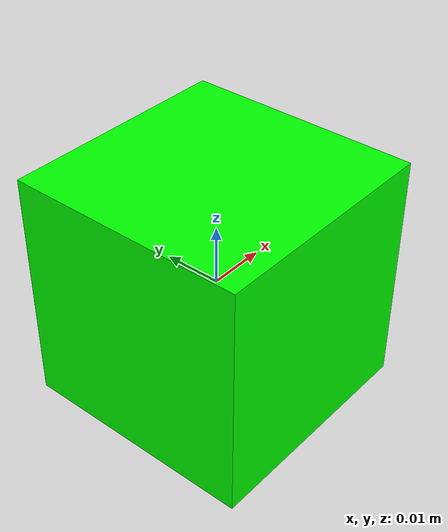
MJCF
<mujoco model="push_box">
  <compiler angle="radian" autolimits="true"/>

  <asset>
    <material name="box_mat" rgba="0 1 0 1" specular="0.4" shininess="0.2"/>
  </asset>

  <worldbody>
    <body name="box" pos="0 0 0">
      <freejoint name="box_joint"/>
      <geom name="box_geom" type="box" size="0.02 0.02 0.02"
            mass="0.05" material="box_mat" condim="6"
            friction="1.3 0.05 0.01"
            solimp="0.95 0.99 0.001" solref="0.02 1.0"/>
      <site name="box_center" pos="0 0 0" size="0.003" rgba="1 0 0 1"/>
    </body>
  </worldbody>
</mujoco>
